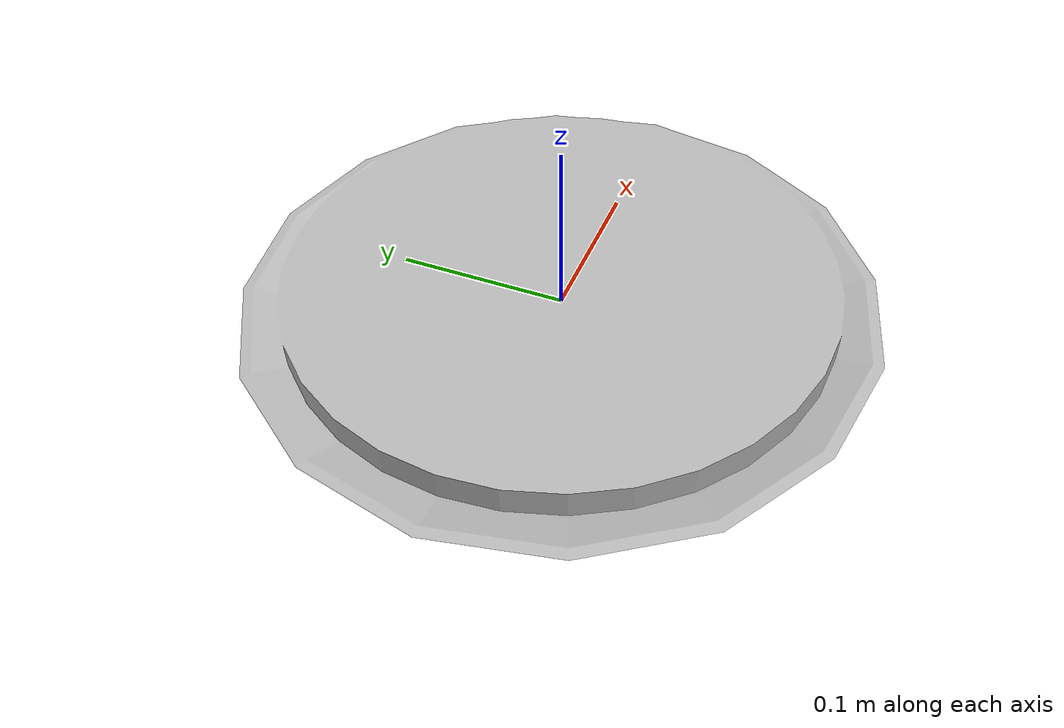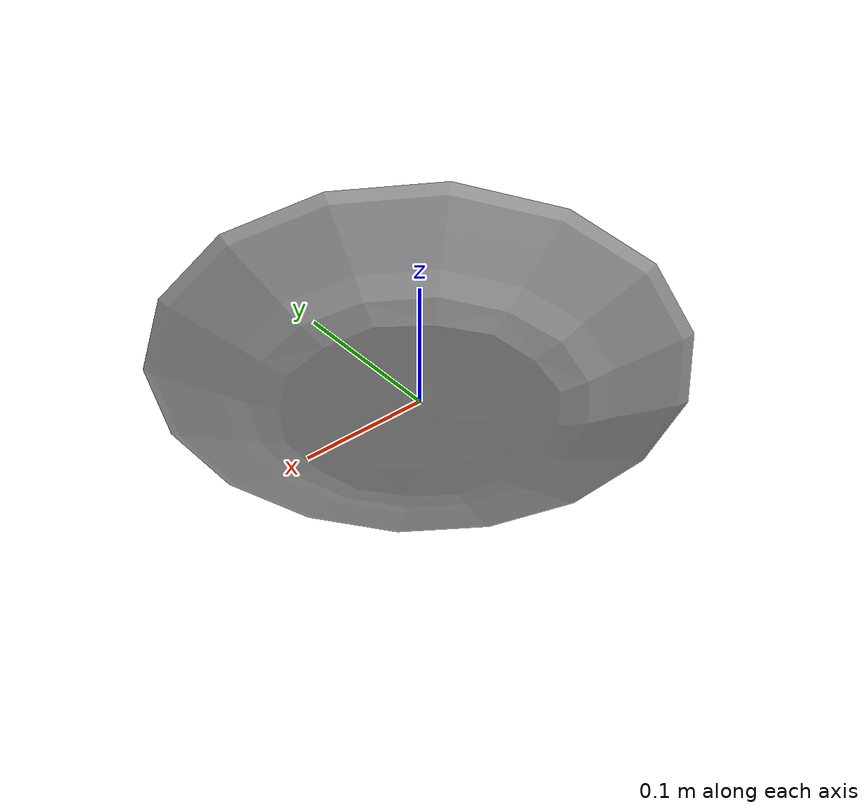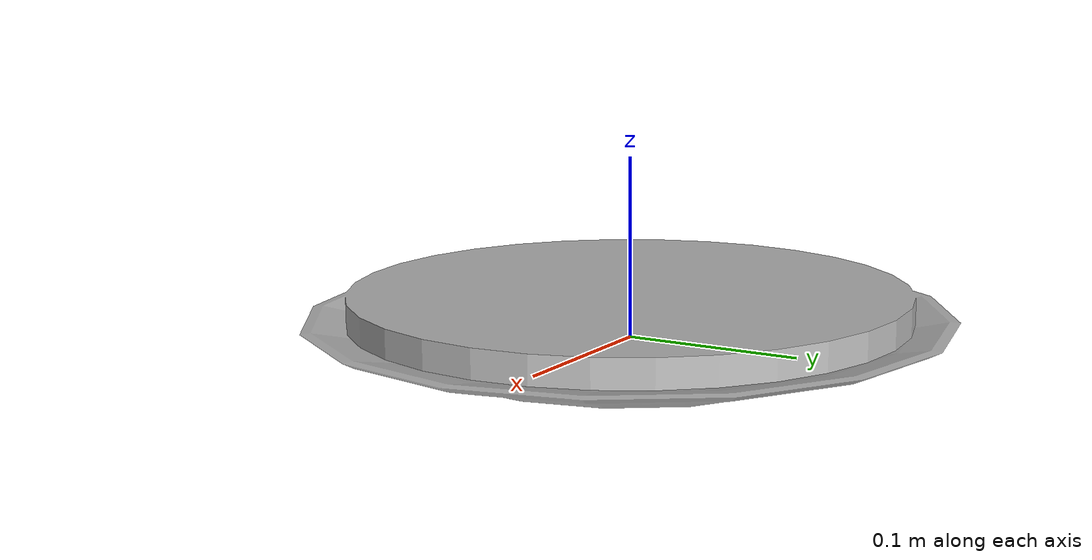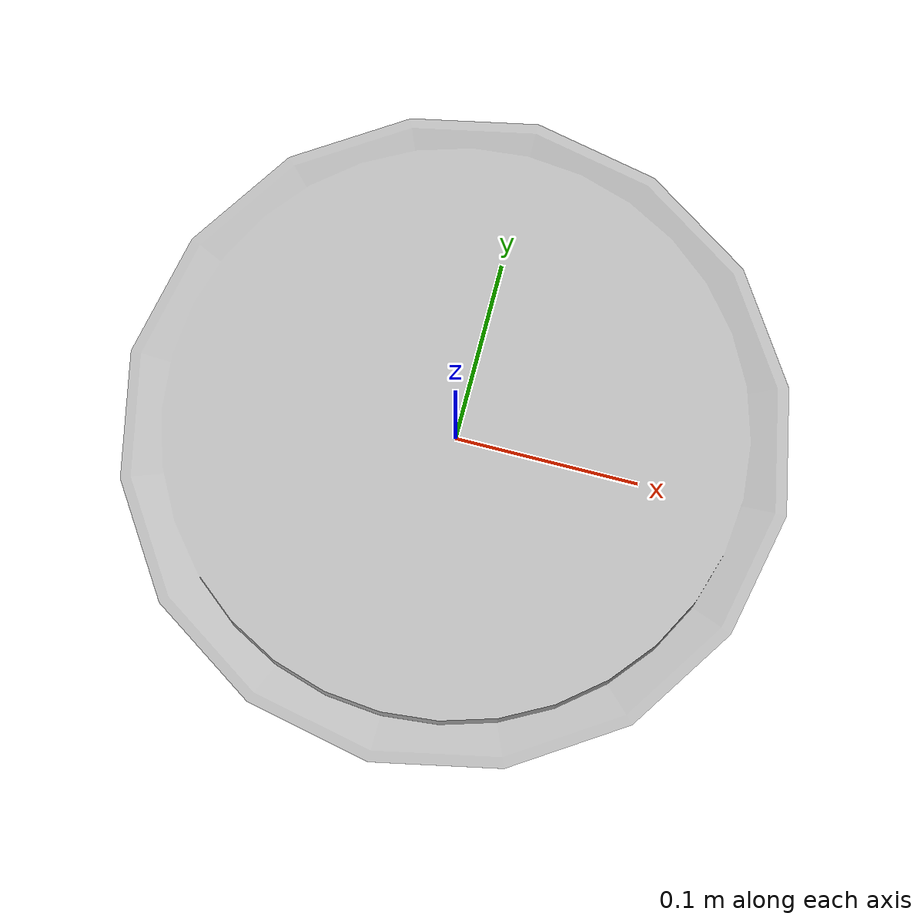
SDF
<?xml version="1.0" ?>
<sdf version="1.3">
  <model name="pizza_plate">
    <link name="pizza_plate">
      <gravity>false</gravity>
      <inertial>
        <mass>0.02</mass>
      </inertial>
      <collision name="collision">
        <geometry><box><size>0.0001 0.0001 0.0001</size></box></geometry>
          <surface>
            <contact>
              <collide_without_contact>true</collide_without_contact>
            </contact>
          </surface>
      </collision>
      <visual name="visual">
        <geometry>
          <mesh>
            <uri>model://pizza_plate/meshes/pizza_plate_visual.dae</uri>
          </mesh>
        </geometry>
      </visual>
    </link>
  </model>
</sdf>
